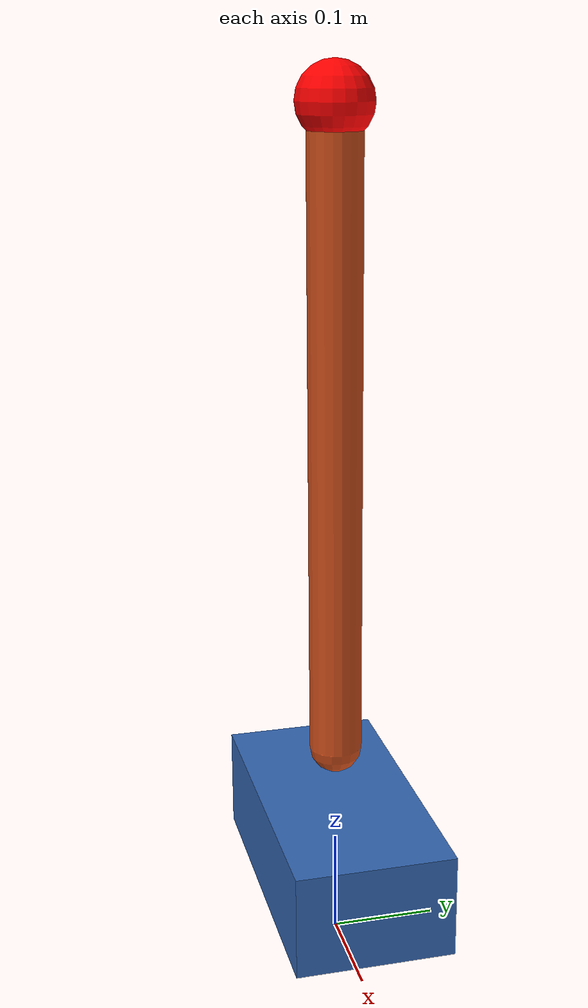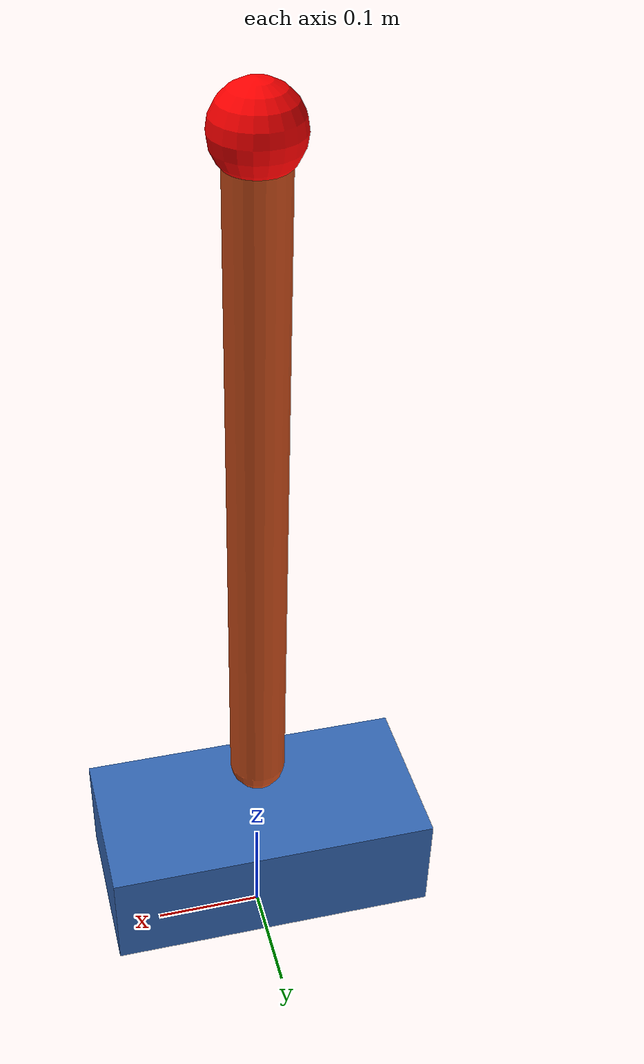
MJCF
<mujoco model="cartpole">
  <option gravity="0 0 -9.81" timestep="0.002"/>

  <worldbody>
    <body name="cart" pos="0 0 0.1">
      <joint name="slider" type="slide" axis="1 0 0" limited="true" range="-2.4 2.4"/>
      <geom name="cart_geom" type="box" size="0.15 0.075 0.05" rgba="0.2 0.4 0.7 1"/>
      <body name="pole" pos="0 0 0.1">
        <joint name="hinge" type="hinge" axis="0 1 0"/>
        <geom name="pole_geom" type="capsule" fromto="0 0 0 0 0 0.6" size="0.025" rgba="0.8 0.3 0.1 1"/>
        <body name="pole_tip" pos="0 0 0.6">
          <geom name="tip_geom" type="sphere" size="0.035" rgba="1 0 0 1"/>
        </body>
      </body>
    </body>
  </worldbody>

  <actuator>
    <motor name="slide" joint="slider" gear="100" ctrllimited="true" ctrlrange="-1 1"/>
  </actuator>
</mujoco>
